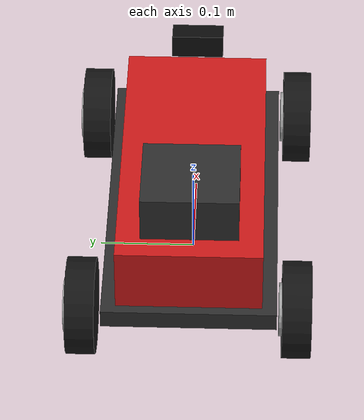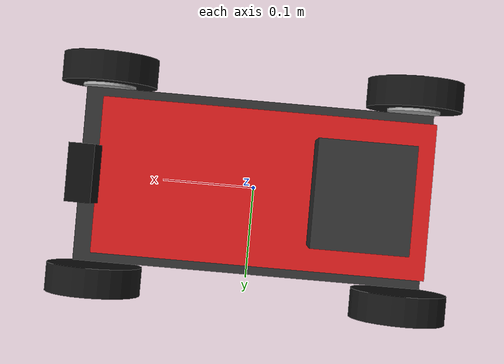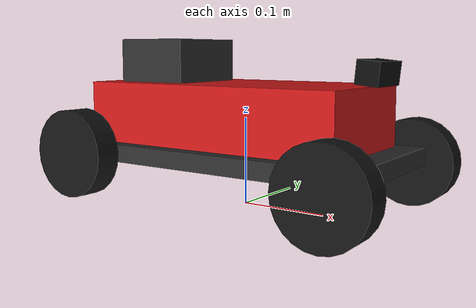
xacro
<?xml version="1.0"?>
<robot xmlns:xacro="http://www.ros.org/wiki/xacro" name="robotcar">

  <!-- ===================== PHYSICAL PARAMETERS ===================== -->
  <xacro:property name="wheelbase"    value="0.32"/>
  <xacro:property name="track_width"  value="0.22"/>
  <xacro:property name="wheel_radius" value="0.05"/>
  <xacro:property name="wheel_width"  value="0.03"/>

  <!-- Chassis plate (lowest, longest element) -->
  <xacro:property name="ch_l"    value="0.36"/>
  <xacro:property name="ch_w"    value="0.18"/>
  <xacro:property name="ch_h"    value="0.020"/>
  <xacro:property name="ch_mass" value="4.5"/>

  <!-- Body shell (on top of chassis plate) -->
  <xacro:property name="body_l"  value="0.32"/>
  <xacro:property name="body_w"  value="0.15"/>
  <xacro:property name="body_h"  value="0.07"/>

  <!-- Mass values -->
  <xacro:property name="steer_mass" value="0.08"/>
  <xacro:property name="wheel_mass" value="0.20"/>

  <!-- ===================== INERTIA MACROS ===================== -->
  <xacro:macro name="box_inertia" params="m x y z">
    <inertial>
      <mass value="${m}"/>
      <inertia ixx="${m*(y*y+z*z)/12}" ixy="0" ixz="0"
               iyy="${m*(x*x+z*z)/12}" iyz="0"
               izz="${m*(x*x+y*y)/12}"/>
    </inertial>
  </xacro:macro>

  <xacro:macro name="cyl_inertia" params="m r h">
    <inertial>
      <mass value="${m}"/>
      <inertia ixx="${m*(3*r*r+h*h)/12}" ixy="0" ixz="0"
               iyy="${m*(3*r*r+h*h)/12}" iyz="0"
               izz="${m*r*r/2}"/>
    </inertial>
  </xacro:macro>

  <!-- ===================== BASE LINK ===================== -->
  <link name="base_link"/>

  <!-- ===================== CHASSIS ===================== -->
  <!-- Place chassis so wheels (at z=wheel_radius) sit on the ground -->
  <joint name="chassis_joint" type="fixed">
    <parent link="base_link"/>
    <child link="chassis"/>
    <origin xyz="0 0 ${wheel_radius + ch_h/2}" rpy="0 0 0"/>
  </joint>

  <link name="chassis">
    <!-- Bottom chassis plate: flat, wide, dark gray -->
    <visual>
      <origin xyz="0 0 0" rpy="0 0 0"/>
      <geometry><box size="${ch_l} ${ch_w} ${ch_h}"/></geometry>
      <material name="anthracite"><color rgba="0.18 0.18 0.18 1.0"/></material>
    </visual>

    <!-- Body shell: sits on top of chassis plate -->
    <visual>
      <origin xyz="-0.01 0 ${ch_h/2 + body_h/2}" rpy="0 0 0"/>
      <geometry><box size="${body_l} ${body_w} ${body_h}"/></geometry>
      <material name="racing_red"><color rgba="0.82 0.10 0.10 1.0"/></material>
    </visual>

    <!-- Cab: smaller box at rear of body (driver cockpit area) -->
    <visual>
      <origin xyz="${-body_l/2 + 0.06} 0 ${ch_h/2 + body_h + 0.025}" rpy="0 0 0"/>
      <geometry><box size="0.09 0.10 0.05"/></geometry>
      <material name="anthracite"/>
    </visual>

    <!-- Front bumper: small bar at very front -->
    <visual>
      <origin xyz="${ch_l/2 - 0.015} 0 ${-ch_h/4}" rpy="0 0 0"/>
      <geometry><box size="0.02 0.17 ${ch_h/2}"/></geometry>
      <material name="anthracite"/>
    </visual>

    <!-- Use combined bounding box for collision -->
    <collision>
      <origin xyz="-0.01 0 ${ch_h/2 + body_h/2}" rpy="0 0 0"/>
      <geometry><box size="${ch_l} ${ch_w} ${ch_h + body_h}"/></geometry>
    </collision>

    <xacro:box_inertia m="${ch_mass}" x="${ch_l}" y="${ch_w}" z="${ch_h + body_h}"/>
  </link>

  <!-- ===================== STEERING LINK MACRO ===================== -->
  <!-- Creates a steering pivot (revolute Z) at the front axle.     -->
  <!-- The wheel spin joint hangs off this link.                     -->
  <xacro:macro name="steering_link" params="prefix x_off y_off">
    <joint name="${prefix}_wheel_steering_joint" type="revolute">
      <parent link="chassis"/>
      <child link="${prefix}_wheel_steering_link"/>
      <!-- z offset: put axle at wheel centre height relative to chassis centre -->
      <origin xyz="${x_off} ${y_off} ${-ch_h/2}" rpy="0 0 0"/>
      <axis xyz="0 0 1"/>
      <limit lower="-0.55" upper="0.55" effort="10.0" velocity="1.5"/>
      <dynamics damping="0.5"/>
    </joint>

    <link name="${prefix}_wheel_steering_link">
      <!-- Thin king-pin cylinder (just for visual clarity) -->
      <visual>
        <origin xyz="0 0 0" rpy="0 0 0"/>
        <geometry><cylinder radius="0.006" length="0.025"/></geometry>
        <material name="silver"><color rgba="0.75 0.75 0.75 1.0"/></material>
      </visual>
      <inertial>
        <mass value="${steer_mass}"/>
        <inertia ixx="0.00005" ixy="0" ixz="0"
                 iyy="0.00005" iyz="0"
                 izz="0.00005"/>
      </inertial>
    </link>
  </xacro:macro>

  <!-- ===================== WHEEL MACRO ===================== -->
  <!-- Works for both steered (parent = steering_link) and         -->
  <!-- non-steered (parent = chassis) wheels.                      -->
  <xacro:macro name="wheel" params="name parent x_off y_off">
    <joint name="${name}_joint" type="continuous">
      <parent link="${parent}"/>
      <child link="${name}"/>
      <origin xyz="${x_off} ${y_off} 0" rpy="0 0 0"/>
      <axis xyz="0 1 0"/>
    </joint>

    <link name="${name}">
      <!-- Tyre -->
      <visual>
        <origin xyz="0 0 0" rpy="${pi/2} 0 0"/>
        <geometry><cylinder radius="${wheel_radius}" length="${wheel_width}"/></geometry>
        <material name="tyre"><color rgba="0.08 0.08 0.08 1.0"/></material>
      </visual>
      <!-- Hubcap disc (decorative) -->
      <visual>
        <origin xyz="0 ${wheel_width/2 + 0.001} 0" rpy="${pi/2} 0 0"/>
        <geometry><cylinder radius="${wheel_radius * 0.55}" length="0.004"/></geometry>
        <material name="hub_silver"><color rgba="0.65 0.65 0.65 1.0"/></material>
      </visual>

      <collision>
        <origin xyz="0 0 0" rpy="${pi/2} 0 0"/>
        <geometry><cylinder radius="${wheel_radius}" length="${wheel_width}"/></geometry>
      </collision>
      <xacro:cyl_inertia m="${wheel_mass}" r="${wheel_radius}" h="${wheel_width}"/>
    </link>
  </xacro:macro>

  <!-- ===================== INSTANTIATE STEERING LINKS ===================== -->
  <xacro:steering_link prefix="front_left"  x_off="${wheelbase/2}"  y_off="${track_width/2}"/>
  <xacro:steering_link prefix="front_right" x_off="${wheelbase/2}"  y_off="${-track_width/2}"/>

  <!-- ===================== FRONT STEERED WHEELS ===================== -->
  <!-- Parent is the steering link; x_off/y_off = 0 (wheel at steering pivot) -->
  <xacro:wheel name="front_left_wheel"
               parent="front_left_wheel_steering_link"
               x_off="0" y_off="0"/>
  <xacro:wheel name="front_right_wheel"
               parent="front_right_wheel_steering_link"
               x_off="0" y_off="0"/>

  <!-- ===================== REAR DRIVE WHEELS ===================== -->
  <xacro:wheel name="rear_left_wheel"
               parent="chassis"
               x_off="${-wheelbase/2}" y_off="${track_width/2}"/>
  <xacro:wheel name="rear_right_wheel"
               parent="chassis"
               x_off="${-wheelbase/2}" y_off="${-track_width/2}"/>

  <!-- ===================== FRONT CAMERA ===================== -->
  <joint name="front_camera_joint" type="fixed">
    <parent link="chassis"/>
    <child link="front_camera_link"/>
    <origin xyz="${ch_l/2 - 0.02} 0 ${ch_h/2 + body_h + 0.015}" rpy="0 0.10 0"/>
  </joint>

  <link name="front_camera_link">
    <visual>
      <origin xyz="0 0 0" rpy="0 0 0"/>
      <geometry><box size="0.025 0.055 0.025"/></geometry>
      <material name="lens"><color rgba="0.05 0.05 0.05 1.0"/></material>
    </visual>
    <collision>
      <geometry><box size="0.025 0.055 0.025"/></geometry>
    </collision>
    <inertial>
      <mass value="0.04"/>
      <inertia ixx="0.00001" ixy="0" ixz="0"
               iyy="0.00001" iyz="0"
               izz="0.00001"/>
    </inertial>
  </link>

  <!-- Camera optical frame: Z forward, X right, Y down (ROS camera convention) -->
  <joint name="front_camera_optical_joint" type="fixed">
    <parent link="front_camera_link"/>
    <child link="front_camera_optical_frame"/>
    <origin xyz="0 0 0" rpy="${-pi/2} 0 ${-pi/2}"/>
  </joint>
  <link name="front_camera_optical_frame"/>

  <!-- ===================== GAZEBO: ACKERMANN STEERING PLUGIN ===================== -->
  <gazebo>
    <plugin filename="ignition-gazebo-ackermann-steering-system"
            name="ignition::gazebo::systems::AckermannSteering">
      <left_joint>rear_left_wheel_joint</left_joint>
      <right_joint>rear_right_wheel_joint</right_joint>
      <left_steering_joint>front_left_wheel_steering_joint</left_steering_joint>
      <right_steering_joint>front_right_wheel_steering_joint</right_steering_joint>
      <kingpin_width>${track_width}</kingpin_width>
      <steering_limit>0.50</steering_limit>
      <wheel_base>${wheelbase}</wheel_base>
      <wheel_separation>${track_width}</wheel_separation>
      <wheel_radius>${wheel_radius}</wheel_radius>
      <min_velocity>-1.5</min_velocity>
      <max_velocity>3.0</max_velocity>
      <min_acceleration>-4.0</min_acceleration>
      <max_acceleration>4.0</max_acceleration>
      <odom_publish_frequency>50</odom_publish_frequency>
      <frame_id>odom</frame_id>
      <child_frame_id>base_link</child_frame_id>
      <odom_topic>/model/robotcar/odometry</odom_topic>
      <tf_topic>/model/robotcar/tf</tf_topic>
    </plugin>
  </gazebo>

  <!-- ===================== IMU ===================== -->
  <joint name="imu_joint" type="fixed">
    <parent link="base_link"/>
    <child link="imu_link"/>
    <origin xyz="0 0 ${wheel_radius + ch_h/2}" rpy="0 0 0"/>
  </joint>
  <link name="imu_link">
    <inertial>
      <mass value="0.01"/>
      <inertia ixx="1e-6" ixy="0" ixz="0" iyy="1e-6" iyz="0" izz="1e-6"/>
    </inertial>
  </link>

  <!-- Noisy IMU sensor (MEMS-grade Gaussian noise on gyro + accel). -->
  <gazebo reference="imu_link">
    <sensor name="imu_sensor" type="imu">
      <always_on>true</always_on>
      <update_rate>100</update_rate>
      <topic>imu</topic>
      <ignition_frame_id>imu_link</ignition_frame_id>
      <imu>
        <angular_velocity>
          <x><noise type="gaussian"><mean>0.0</mean><stddev>0.009</stddev><bias_mean>0.0</bias_mean><bias_stddev>0.0004</bias_stddev></noise></x>
          <y><noise type="gaussian"><mean>0.0</mean><stddev>0.009</stddev><bias_mean>0.0</bias_mean><bias_stddev>0.0004</bias_stddev></noise></y>
          <z><noise type="gaussian"><mean>0.0</mean><stddev>0.009</stddev><bias_mean>0.0</bias_mean><bias_stddev>0.0004</bias_stddev></noise></z>
        </angular_velocity>
        <linear_acceleration>
          <x><noise type="gaussian"><mean>0.0</mean><stddev>0.08</stddev><bias_mean>0.0</bias_mean><bias_stddev>0.005</bias_stddev></noise></x>
          <y><noise type="gaussian"><mean>0.0</mean><stddev>0.08</stddev><bias_mean>0.0</bias_mean><bias_stddev>0.005</bias_stddev></noise></y>
          <z><noise type="gaussian"><mean>0.0</mean><stddev>0.08</stddev><bias_mean>0.0</bias_mean><bias_stddev>0.005</bias_stddev></noise></z>
        </linear_acceleration>
      </imu>
    </sensor>
  </gazebo>

  <!-- ===================== GAZEBO: GROUND-TRUTH ODOMETRY ===================== -->
  <gazebo>
    <plugin filename="ignition-gazebo-odometry-publisher-system"
            name="ignition::gazebo::systems::OdometryPublisher">
      <dimensions>2</dimensions>
      <odom_frame>odom</odom_frame>
      <robot_base_frame>base_link</robot_base_frame>
      <odom_publish_frequency>50</odom_publish_frequency>
      <odom_topic>/model/robotcar/odometry_truth</odom_topic>
      <tf_topic>/model/robotcar/tf_truth</tf_topic>
    </plugin>
  </gazebo>

  <!-- ===================== GAZEBO: RGB-D CAMERA SENSOR ===================== -->
  <gazebo reference="front_camera_link">
    <sensor name="front_camera" type="rgbd_camera">
      <always_on>true</always_on>
      <update_rate>10</update_rate>
      <camera>
        <horizontal_fov>1.047</horizontal_fov>
        <image>
          <width>640</width>
          <height>360</height>
          <format>R8G8B8</format>
        </image>
        <clip><near>0.08</near><far>15.0</far></clip>
        <depth_camera><output>depths</output></depth_camera>
      </camera>
      <topic>camera/front</topic>
      <ignition_frame_id>front_camera_optical_frame</ignition_frame_id>
    </sensor>
  </gazebo>

  <!-- ===================== GAZEBO: JOINT STATE PUBLISHER ===================== -->
  <!-- Publishes joint states so robot_state_publisher can compute FK/TF -->
  <gazebo>
    <plugin filename="ignition-gazebo-joint-state-publisher-system"
            name="ignition::gazebo::systems::JointStatePublisher"/>
  </gazebo>

  <!-- Gazebo material overrides -->
  <gazebo reference="chassis">
    <material>Gazebo/DarkGrey</material>
  </gazebo>

</robot>
